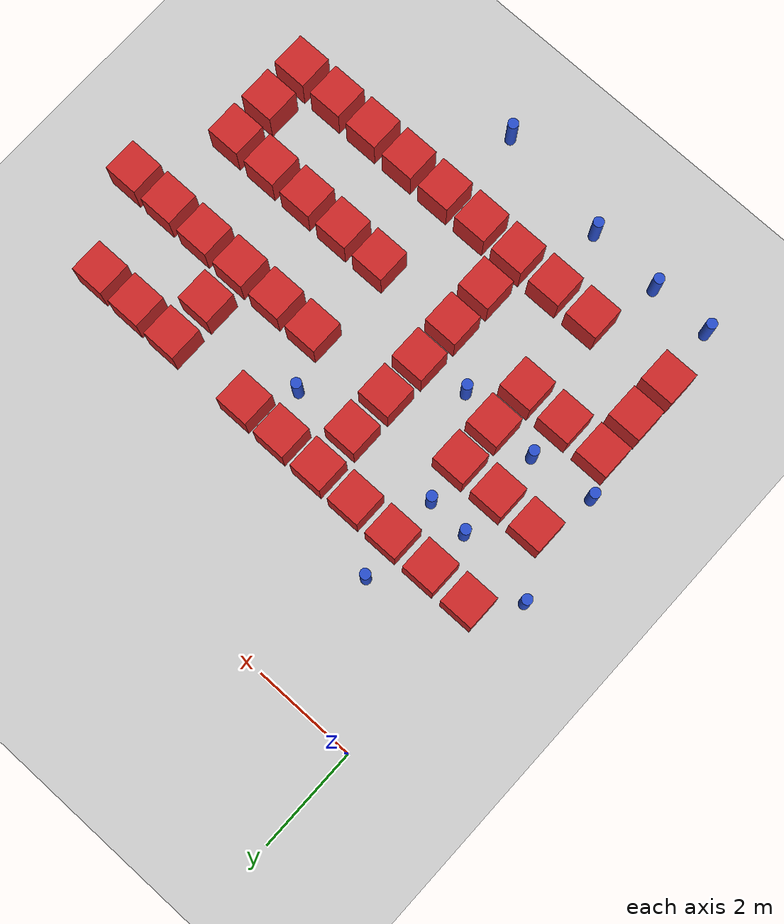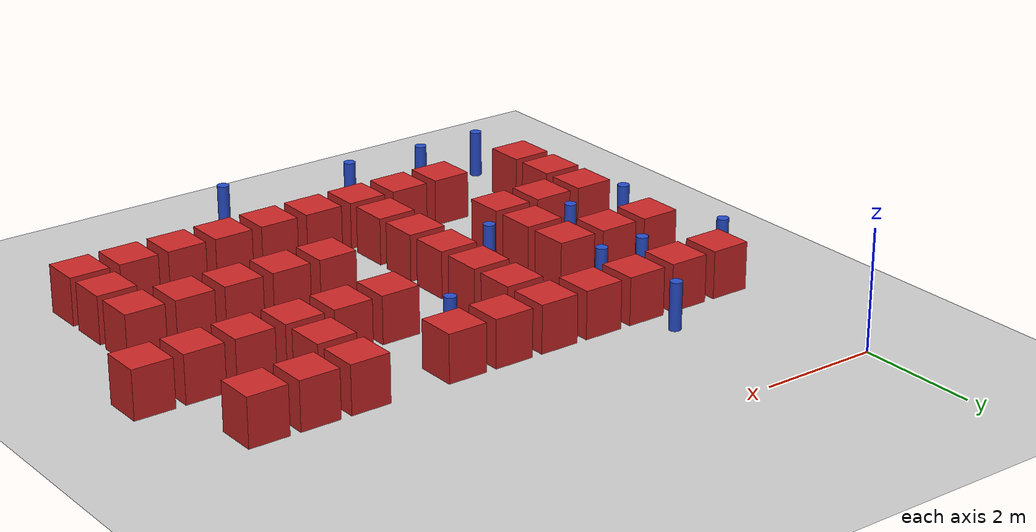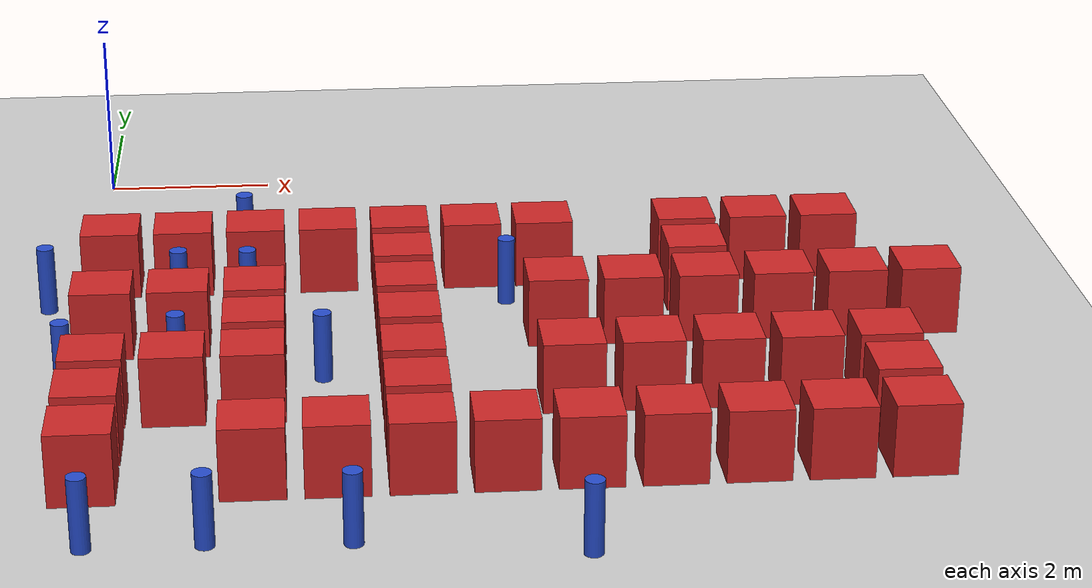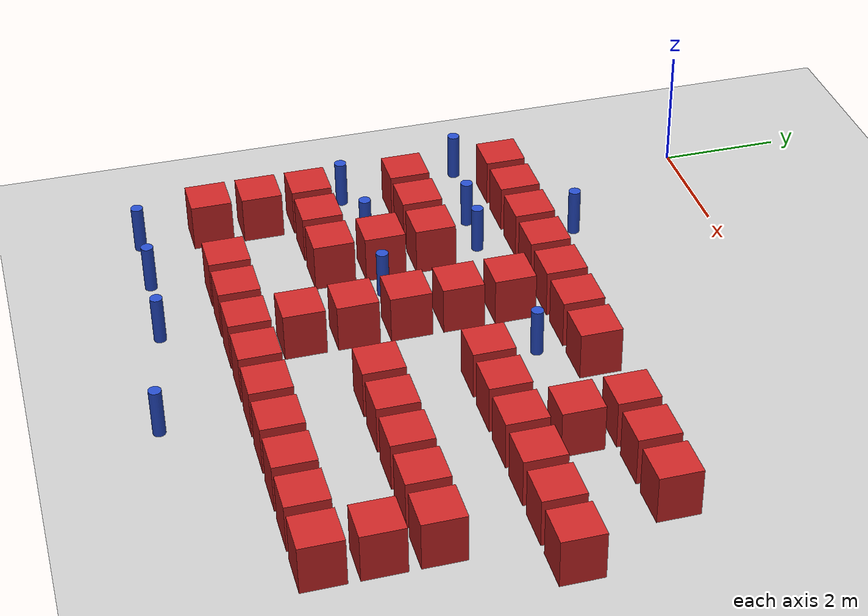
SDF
<sdf version="1.6">
 <world name="default">
  <model name="ground_plane">
   <static>1</static>
   <link name="link">
    <collision name="collision">
     <geometry><plane><normal>0 0 1</normal><size>100 100</size></plane></geometry>
     <surface><friction><ode><mu>100</mu><mu2>50</mu2></ode></friction></surface>
    </collision>
    <visual name="visual">
     <cast_shadows>0</cast_shadows>
     <geometry><plane><normal>0 0 1</normal><size>100 100</size></plane></geometry>
     <material>
      <script><uri>file://media/materials/scripts/gazebo.material</uri><name>Gazebo/Grey</name></script>
     </material>
    </visual>
   </link>
  </model>
  <model name="box_obstacle112">
   <static>0</static>
   <link name="link">
    <pose>0 0 0.1 0 -0 0</pose>
    <inertial>
     <mass>100</mass>
     <inertia>
      <ixx>0.166667</ixx>
      <ixy>0</ixy>
      <ixz>0</ixz>
      <iyy>0.166667</iyy>
      <iyz>0</iyz>
      <izz>0.166667</izz>
     </inertia>
    </inertial>
    <collision name="collision"><geometry><box><size>0.675 0.675 0.8</size></box></geometry></collision>
    <visual name="visual">
     <geometry><box><size>0.675 0.675 0.8</size></box></geometry>
     <material>
      <script><name>Gazebo/Red</name><uri>file://media/materials/scripts/gazebo.material</uri></script>
     </material>
    </visual>
   </link>
   <pose>0.19903 -8.30135 0.299996 4e-06 -0 0.001125</pose>
  </model>
  <model name="box_obstacle113">
   <static>0</static>
   <link name="link">
    <pose>0 0 0.1 0 -0 0</pose>
    <inertial>
     <mass>100</mass>
     <inertia>
      <ixx>0.166667</ixx>
      <ixy>0</ixy>
      <ixz>0</ixz>
      <iyy>0.166667</iyy>
      <iyz>0</iyz>
      <izz>0.166667</izz>
     </inertia>
    </inertial>
    <collision name="collision"><geometry><box><size>0.675 0.675 0.8</size></box></geometry></collision>
    <visual name="visual">
     <geometry><box><size>0.675 0.675 0.8</size></box></geometry>
     <material>
      <script><name>Gazebo/Red</name><uri>file://media/materials/scripts/gazebo.material</uri></script>
     </material>
    </visual>
   </link>
   <pose>0.19903 -7.45135 0.299996 4e-06 -0 0.001125</pose>
  </model>
  <model name="box_obstacle114">
   <static>0</static>
   <link name="link">
    <pose>0 0 0.1 0 -0 0</pose>
    <inertial>
     <mass>100</mass>
     <inertia>
      <ixx>0.166667</ixx>
      <ixy>0</ixy>
      <ixz>0</ixz>
      <iyy>0.166667</iyy>
      <iyz>0</iyz>
      <izz>0.166667</izz>
     </inertia>
    </inertial>
    <collision name="collision"><geometry><box><size>0.675 0.675 0.8</size></box></geometry></collision>
    <visual name="visual">
     <geometry><box><size>0.675 0.675 0.8</size></box></geometry>
     <material>
      <script><name>Gazebo/Red</name><uri>file://media/materials/scripts/gazebo.material</uri></script>
     </material>
    </visual>
   </link>
   <pose>0.19903 -6.60135 0.299996 4e-06 -0 0.001125</pose>
  </model>
  <model name="box_obstacle115">
   <static>0</static>
   <link name="link">
    <pose>0 0 0.1 0 -0 0</pose>
    <inertial>
     <mass>100</mass>
     <inertia>
      <ixx>0.166667</ixx>
      <ixy>0</ixy>
      <ixz>0</ixz>
      <iyy>0.166667</iyy>
      <iyz>0</iyz>
      <izz>0.166667</izz>
     </inertia>
    </inertial>
    <collision name="collision"><geometry><box><size>0.675 0.675 0.8</size></box></geometry></collision>
    <visual name="visual">
     <geometry><box><size>0.675 0.675 0.8</size></box></geometry>
     <material>
      <script><name>Gazebo/Red</name><uri>file://media/materials/scripts/gazebo.material</uri></script>
     </material>
    </visual>
   </link>
   <pose>0.19903 -4.90135 0.299996 4e-06 -0 0.001125</pose>
  </model>
  <model name="box_obstacle116">
   <static>0</static>
   <link name="link">
    <pose>0 0 0.1 0 -0 0</pose>
    <inertial>
     <mass>100</mass>
     <inertia>
      <ixx>0.166667</ixx>
      <ixy>0</ixy>
      <ixz>0</ixz>
      <iyy>0.166667</iyy>
      <iyz>0</iyz>
      <izz>0.166667</izz>
     </inertia>
    </inertial>
    <collision name="collision"><geometry><box><size>0.675 0.675 0.8</size></box></geometry></collision>
    <visual name="visual">
     <geometry><box><size>0.675 0.675 0.8</size></box></geometry>
     <material>
      <script><name>Gazebo/Red</name><uri>file://media/materials/scripts/gazebo.material</uri></script>
     </material>
    </visual>
   </link>
   <pose>0.19903 -3.20135 0.299996 4e-06 -0 0.001125</pose>
  </model>
  <model name="box_obstacle127">
   <static>0</static>
   <link name="link">
    <pose>0 0 0.1 0 -0 0</pose>
    <inertial>
     <mass>100</mass>
     <inertia>
      <ixx>0.166667</ixx>
      <ixy>0</ixy>
      <ixz>0</ixz>
      <iyy>0.166667</iyy>
      <iyz>0</iyz>
      <izz>0.166667</izz>
     </inertia>
    </inertial>
    <collision name="collision"><geometry><box><size>0.675 0.675 0.8</size></box></geometry></collision>
    <visual name="visual">
     <geometry><box><size>0.675 0.675 0.8</size></box></geometry>
     <material>
      <script><name>Gazebo/Red</name><uri>file://media/materials/scripts/gazebo.material</uri></script>
     </material>
    </visual>
   </link>
   <pose>1.04903 -6.60135 0.299996 4e-06 -0 0.001125</pose>
  </model>
  <model name="box_obstacle128">
   <static>0</static>
   <link name="link">
    <pose>0 0 0.1 0 -0 0</pose>
    <inertial>
     <mass>100</mass>
     <inertia>
      <ixx>0.166667</ixx>
      <ixy>0</ixy>
      <ixz>0</ixz>
      <iyy>0.166667</iyy>
      <iyz>0</iyz>
      <izz>0.166667</izz>
     </inertia>
    </inertial>
    <collision name="collision"><geometry><box><size>0.675 0.675 0.8</size></box></geometry></collision>
    <visual name="visual">
     <geometry><box><size>0.675 0.675 0.8</size></box></geometry>
     <material>
      <script><name>Gazebo/Red</name><uri>file://media/materials/scripts/gazebo.material</uri></script>
     </material>
    </visual>
   </link>
   <pose>1.04903 -4.90135 0.299996 4e-06 -0 0.001125</pose>
  </model>
  <model name="box_obstacle129">
   <static>0</static>
   <link name="link">
    <pose>0 0 0.1 0 -0 0</pose>
    <inertial>
     <mass>100</mass>
     <inertia>
      <ixx>0.166667</ixx>
      <ixy>0</ixy>
      <ixz>0</ixz>
      <iyy>0.166667</iyy>
      <iyz>0</iyz>
      <izz>0.166667</izz>
     </inertia>
    </inertial>
    <collision name="collision"><geometry><box><size>0.675 0.675 0.8</size></box></geometry></collision>
    <visual name="visual">
     <geometry><box><size>0.675 0.675 0.8</size></box></geometry>
     <material>
      <script><name>Gazebo/Red</name><uri>file://media/materials/scripts/gazebo.material</uri></script>
     </material>
    </visual>
   </link>
   <pose>1.04903 -3.20135 0.299996 4e-06 -0 0.001125</pose>
  </model>
  <model name="box_obstacle133">
   <static>0</static>
   <link name="link">
    <pose>0 0 0.1 0 -0 0</pose>
    <inertial>
     <mass>100</mass>
     <inertia>
      <ixx>0.166667</ixx>
      <ixy>0</ixy>
      <ixz>0</ixz>
      <iyy>0.166667</iyy>
      <iyz>0</iyz>
      <izz>0.166667</izz>
     </inertia>
    </inertial>
    <collision name="collision"><geometry><box><size>0.675 0.675 0.8</size></box></geometry></collision>
    <visual name="visual">
     <geometry><box><size>0.675 0.675 0.8</size></box></geometry>
     <material>
      <script><name>Gazebo/Red</name><uri>file://media/materials/scripts/gazebo.material</uri></script>
     </material>
    </visual>
   </link>
   <pose>1.89903 -8.30135 0.299996 4e-06 -0 0.001125</pose>
  </model>
  <model name="box_obstacle134">
   <static>0</static>
   <link name="link">
    <pose>0 0 0.1 0 -0 0</pose>
    <inertial>
     <mass>100</mass>
     <inertia>
      <ixx>0.166667</ixx>
      <ixy>0</ixy>
      <ixz>0</ixz>
      <iyy>0.166667</iyy>
      <iyz>0</iyz>
      <izz>0.166667</izz>
     </inertia>
    </inertial>
    <collision name="collision"><geometry><box><size>0.675 0.675 0.8</size></box></geometry></collision>
    <visual name="visual">
     <geometry><box><size>0.675 0.675 0.8</size></box></geometry>
     <material>
      <script><name>Gazebo/Red</name><uri>file://media/materials/scripts/gazebo.material</uri></script>
     </material>
    </visual>
   </link>
   <pose>1.89903 -6.60135 0.299996 4e-06 -0 0.001125</pose>
  </model>
  <model name="box_obstacle135">
   <static>0</static>
   <link name="link">
    <pose>0 0 0.1 0 -0 0</pose>
    <inertial>
     <mass>100</mass>
     <inertia>
      <ixx>0.166667</ixx>
      <ixy>0</ixy>
      <ixz>0</ixz>
      <iyy>0.166667</iyy>
      <iyz>0</iyz>
      <izz>0.166667</izz>
     </inertia>
    </inertial>
    <collision name="collision"><geometry><box><size>0.675 0.675 0.8</size></box></geometry></collision>
    <visual name="visual">
     <geometry><box><size>0.675 0.675 0.8</size></box></geometry>
     <material>
      <script><name>Gazebo/Red</name><uri>file://media/materials/scripts/gazebo.material</uri></script>
     </material>
    </visual>
   </link>
   <pose>1.89903 -5.75135 0.299996 4e-06 -0 0.001125</pose>
  </model>
  <model name="box_obstacle136">
   <static>0</static>
   <link name="link">
    <pose>0 0 0.1 0 -0 0</pose>
    <inertial>
     <mass>100</mass>
     <inertia>
      <ixx>0.166667</ixx>
      <ixy>0</ixy>
      <ixz>0</ixz>
      <iyy>0.166667</iyy>
      <iyz>0</iyz>
      <izz>0.166667</izz>
     </inertia>
    </inertial>
    <collision name="collision"><geometry><box><size>0.675 0.675 0.8</size></box></geometry></collision>
    <visual name="visual">
     <geometry><box><size>0.675 0.675 0.8</size></box></geometry>
     <material>
      <script><name>Gazebo/Red</name><uri>file://media/materials/scripts/gazebo.material</uri></script>
     </material>
    </visual>
   </link>
   <pose>1.89903 -4.90135 0.299996 4e-06 -0 0.001125</pose>
  </model>
  <model name="box_obstacle137">
   <static>0</static>
   <link name="link">
    <pose>0 0 0.1 0 -0 0</pose>
    <inertial>
     <mass>100</mass>
     <inertia>
      <ixx>0.166667</ixx>
      <ixy>0</ixy>
      <ixz>0</ixz>
      <iyy>0.166667</iyy>
      <iyz>0</iyz>
      <izz>0.166667</izz>
     </inertia>
    </inertial>
    <collision name="collision"><geometry><box><size>0.675 0.675 0.8</size></box></geometry></collision>
    <visual name="visual">
     <geometry><box><size>0.675 0.675 0.8</size></box></geometry>
     <material>
      <script><name>Gazebo/Red</name><uri>file://media/materials/scripts/gazebo.material</uri></script>
     </material>
    </visual>
   </link>
   <pose>1.89903 -3.20135 0.299996 4e-06 -0 0.001125</pose>
  </model>
  <model name="box_obstacle148">
   <static>0</static>
   <link name="link">
    <pose>0 0 0.1 0 -0 0</pose>
    <inertial>
     <mass>100</mass>
     <inertia>
      <ixx>0.166667</ixx>
      <ixy>0</ixy>
      <ixz>0</ixz>
      <iyy>0.166667</iyy>
      <iyz>0</iyz>
      <izz>0.166667</izz>
     </inertia>
    </inertial>
    <collision name="collision"><geometry><box><size>0.675 0.675 0.8</size></box></geometry></collision>
    <visual name="visual">
     <geometry><box><size>0.675 0.675 0.8</size></box></geometry>
     <material>
      <script><name>Gazebo/Red</name><uri>file://media/materials/scripts/gazebo.material</uri></script>
     </material>
    </visual>
   </link>
   <pose>2.74903 -8.30135 0.299996 4e-06 -0 0.001125</pose>
  </model>
  <model name="box_obstacle149">
   <static>0</static>
   <link name="link">
    <pose>0 0 0.1 0 -0 0</pose>
    <inertial>
     <mass>100</mass>
     <inertia>
      <ixx>0.166667</ixx>
      <ixy>0</ixy>
      <ixz>0</ixz>
      <iyy>0.166667</iyy>
      <iyz>0</iyz>
      <izz>0.166667</izz>
     </inertia>
    </inertial>
    <collision name="collision"><geometry><box><size>0.675 0.675 0.8</size></box></geometry></collision>
    <visual name="visual">
     <geometry><box><size>0.675 0.675 0.8</size></box></geometry>
     <material>
      <script><name>Gazebo/Red</name><uri>file://media/materials/scripts/gazebo.material</uri></script>
     </material>
    </visual>
   </link>
   <pose>2.74903 -3.20135 0.299996 4e-06 -0 0.001125</pose>
  </model>
  <model name="box_obstacle155">
   <static>0</static>
   <link name="link">
    <pose>0 0 0.1 0 -0 0</pose>
    <inertial>
     <mass>100</mass>
     <inertia>
      <ixx>0.166667</ixx>
      <ixy>0</ixy>
      <ixz>0</ixz>
      <iyy>0.166667</iyy>
      <iyz>0</iyz>
      <izz>0.166667</izz>
     </inertia>
    </inertial>
    <collision name="collision"><geometry><box><size>0.675 0.675 0.8</size></box></geometry></collision>
    <visual name="visual">
     <geometry><box><size>0.675 0.675 0.8</size></box></geometry>
     <material>
      <script><name>Gazebo/Red</name><uri>file://media/materials/scripts/gazebo.material</uri></script>
     </material>
    </visual>
   </link>
   <pose>3.59903 -8.30135 0.299996 4e-06 -0 0.001125</pose>
  </model>
  <model name="box_obstacle156">
   <static>0</static>
   <link name="link">
    <pose>0 0 0.1 0 -0 0</pose>
    <inertial>
     <mass>100</mass>
     <inertia>
      <ixx>0.166667</ixx>
      <ixy>0</ixy>
      <ixz>0</ixz>
      <iyy>0.166667</iyy>
      <iyz>0</iyz>
      <izz>0.166667</izz>
     </inertia>
    </inertial>
    <collision name="collision"><geometry><box><size>0.675 0.675 0.8</size></box></geometry></collision>
    <visual name="visual">
     <geometry><box><size>0.675 0.675 0.8</size></box></geometry>
     <material>
      <script><name>Gazebo/Red</name><uri>file://media/materials/scripts/gazebo.material</uri></script>
     </material>
    </visual>
   </link>
   <pose>3.59903 -7.45135 0.299996 4e-06 -0 0.001125</pose>
  </model>
  <model name="box_obstacle157">
   <static>0</static>
   <link name="link">
    <pose>0 0 0.1 0 -0 0</pose>
    <inertial>
     <mass>100</mass>
     <inertia>
      <ixx>0.166667</ixx>
      <ixy>0</ixy>
      <ixz>0</ixz>
      <iyy>0.166667</iyy>
      <iyz>0</iyz>
      <izz>0.166667</izz>
     </inertia>
    </inertial>
    <collision name="collision"><geometry><box><size>0.675 0.675 0.8</size></box></geometry></collision>
    <visual name="visual">
     <geometry><box><size>0.675 0.675 0.8</size></box></geometry>
     <material>
      <script><name>Gazebo/Red</name><uri>file://media/materials/scripts/gazebo.material</uri></script>
     </material>
    </visual>
   </link>
   <pose>3.59903 -6.60135 0.299996 4e-06 -0 0.001125</pose>
  </model>
  <model name="box_obstacle158">
   <static>0</static>
   <link name="link">
    <pose>0 0 0.1 0 -0 0</pose>
    <inertial>
     <mass>100</mass>
     <inertia>
      <ixx>0.166667</ixx>
      <ixy>0</ixy>
      <ixz>0</ixz>
      <iyy>0.166667</iyy>
      <iyz>0</iyz>
      <izz>0.166667</izz>
     </inertia>
    </inertial>
    <collision name="collision"><geometry><box><size>0.675 0.675 0.8</size></box></geometry></collision>
    <visual name="visual">
     <geometry><box><size>0.675 0.675 0.8</size></box></geometry>
     <material>
      <script><name>Gazebo/Red</name><uri>file://media/materials/scripts/gazebo.material</uri></script>
     </material>
    </visual>
   </link>
   <pose>3.59903 -5.75135 0.299996 4e-06 -0 0.001125</pose>
  </model>
  <model name="box_obstacle159">
   <static>0</static>
   <link name="link">
    <pose>0 0 0.1 0 -0 0</pose>
    <inertial>
     <mass>100</mass>
     <inertia>
      <ixx>0.166667</ixx>
      <ixy>0</ixy>
      <ixz>0</ixz>
      <iyy>0.166667</iyy>
      <iyz>0</iyz>
      <izz>0.166667</izz>
     </inertia>
    </inertial>
    <collision name="collision"><geometry><box><size>0.675 0.675 0.8</size></box></geometry></collision>
    <visual name="visual">
     <geometry><box><size>0.675 0.675 0.8</size></box></geometry>
     <material>
      <script><name>Gazebo/Red</name><uri>file://media/materials/scripts/gazebo.material</uri></script>
     </material>
    </visual>
   </link>
   <pose>3.59903 -4.90135 0.299996 4e-06 -0 0.001125</pose>
  </model>
  <model name="box_obstacle160">
   <static>0</static>
   <link name="link">
    <pose>0 0 0.1 0 -0 0</pose>
    <inertial>
     <mass>100</mass>
     <inertia>
      <ixx>0.166667</ixx>
      <ixy>0</ixy>
      <ixz>0</ixz>
      <iyy>0.166667</iyy>
      <iyz>0</iyz>
      <izz>0.166667</izz>
     </inertia>
    </inertial>
    <collision name="collision"><geometry><box><size>0.675 0.675 0.8</size></box></geometry></collision>
    <visual name="visual">
     <geometry><box><size>0.675 0.675 0.8</size></box></geometry>
     <material>
      <script><name>Gazebo/Red</name><uri>file://media/materials/scripts/gazebo.material</uri></script>
     </material>
    </visual>
   </link>
   <pose>3.59903 -4.05135 0.299996 4e-06 -0 0.001125</pose>
  </model>
  <model name="box_obstacle161">
   <static>0</static>
   <link name="link">
    <pose>0 0 0.1 0 -0 0</pose>
    <inertial>
     <mass>100</mass>
     <inertia>
      <ixx>0.166667</ixx>
      <ixy>0</ixy>
      <ixz>0</ixz>
      <iyy>0.166667</iyy>
      <iyz>0</iyz>
      <izz>0.166667</izz>
     </inertia>
    </inertial>
    <collision name="collision"><geometry><box><size>0.675 0.675 0.8</size></box></geometry></collision>
    <visual name="visual">
     <geometry><box><size>0.675 0.675 0.8</size></box></geometry>
     <material>
      <script><name>Gazebo/Red</name><uri>file://media/materials/scripts/gazebo.material</uri></script>
     </material>
    </visual>
   </link>
   <pose>3.59903 -3.20135 0.299996 4e-06 -0 0.001125</pose>
  </model>
  <model name="box_obstacle171">
   <static>0</static>
   <link name="link">
    <pose>0 0 0.1 0 -0 0</pose>
    <inertial>
     <mass>100</mass>
     <inertia>
      <ixx>0.166667</ixx>
      <ixy>0</ixy>
      <ixz>0</ixz>
      <iyy>0.166667</iyy>
      <iyz>0</iyz>
      <izz>0.166667</izz>
     </inertia>
    </inertial>
    <collision name="collision"><geometry><box><size>0.675 0.675 0.8</size></box></geometry></collision>
    <visual name="visual">
     <geometry><box><size>0.675 0.675 0.8</size></box></geometry>
     <material>
      <script><name>Gazebo/Red</name><uri>file://media/materials/scripts/gazebo.material</uri></script>
     </material>
    </visual>
   </link>
   <pose>4.44903 -8.30135 0.299996 4e-06 -0 0.001125</pose>
  </model>
  <model name="box_obstacle172">
   <static>0</static>
   <link name="link">
    <pose>0 0 0.1 0 -0 0</pose>
    <inertial>
     <mass>100</mass>
     <inertia>
      <ixx>0.166667</ixx>
      <ixy>0</ixy>
      <ixz>0</ixz>
      <iyy>0.166667</iyy>
      <iyz>0</iyz>
      <izz>0.166667</izz>
     </inertia>
    </inertial>
    <collision name="collision"><geometry><box><size>0.675 0.675 0.8</size></box></geometry></collision>
    <visual name="visual">
     <geometry><box><size>0.675 0.675 0.8</size></box></geometry>
     <material>
      <script><name>Gazebo/Red</name><uri>file://media/materials/scripts/gazebo.material</uri></script>
     </material>
    </visual>
   </link>
   <pose>4.44903 -3.20135 0.299996 4e-06 -0 0.001125</pose>
  </model>
  <model name="box_obstacle177">
   <static>0</static>
   <link name="link">
    <pose>0 0 0.1 0 -0 0</pose>
    <inertial>
     <mass>100</mass>
     <inertia>
      <ixx>0.166667</ixx>
      <ixy>0</ixy>
      <ixz>0</ixz>
      <iyy>0.166667</iyy>
      <iyz>0</iyz>
      <izz>0.166667</izz>
     </inertia>
    </inertial>
    <collision name="collision"><geometry><box><size>0.675 0.675 0.8</size></box></geometry></collision>
    <visual name="visual">
     <geometry><box><size>0.675 0.675 0.8</size></box></geometry>
     <material>
      <script><name>Gazebo/Red</name><uri>file://media/materials/scripts/gazebo.material</uri></script>
     </material>
    </visual>
   </link>
   <pose>5.29903 -8.30135 0.299996 4e-06 -0 0.001125</pose>
  </model>
  <model name="box_obstacle178">
   <static>0</static>
   <link name="link">
    <pose>0 0 0.1 0 -0 0</pose>
    <inertial>
     <mass>100</mass>
     <inertia>
      <ixx>0.166667</ixx>
      <ixy>0</ixy>
      <ixz>0</ixz>
      <iyy>0.166667</iyy>
      <iyz>0</iyz>
      <izz>0.166667</izz>
     </inertia>
    </inertial>
    <collision name="collision"><geometry><box><size>0.675 0.675 0.8</size></box></geometry></collision>
    <visual name="visual">
     <geometry><box><size>0.675 0.675 0.8</size></box></geometry>
     <material>
      <script><name>Gazebo/Red</name><uri>file://media/materials/scripts/gazebo.material</uri></script>
     </material>
    </visual>
   </link>
   <pose>5.29903 -6.60135 0.299996 4e-06 -0 0.001125</pose>
  </model>
  <model name="box_obstacle179">
   <static>0</static>
   <link name="link">
    <pose>0 0 0.1 0 -0 0</pose>
    <inertial>
     <mass>100</mass>
     <inertia>
      <ixx>0.166667</ixx>
      <ixy>0</ixy>
      <ixz>0</ixz>
      <iyy>0.166667</iyy>
      <iyz>0</iyz>
      <izz>0.166667</izz>
     </inertia>
    </inertial>
    <collision name="collision"><geometry><box><size>0.675 0.675 0.8</size></box></geometry></collision>
    <visual name="visual">
     <geometry><box><size>0.675 0.675 0.8</size></box></geometry>
     <material>
      <script><name>Gazebo/Red</name><uri>file://media/materials/scripts/gazebo.material</uri></script>
     </material>
    </visual>
   </link>
   <pose>5.29903 -4.90135 0.299996 4e-06 -0 0.001125</pose>
  </model>
  <model name="box_obstacle180">
   <static>0</static>
   <link name="link">
    <pose>0 0 0.1 0 -0 0</pose>
    <inertial>
     <mass>100</mass>
     <inertia>
      <ixx>0.166667</ixx>
      <ixy>0</ixy>
      <ixz>0</ixz>
      <iyy>0.166667</iyy>
      <iyz>0</iyz>
      <izz>0.166667</izz>
     </inertia>
    </inertial>
    <collision name="collision"><geometry><box><size>0.675 0.675 0.8</size></box></geometry></collision>
    <visual name="visual">
     <geometry><box><size>0.675 0.675 0.8</size></box></geometry>
     <material>
      <script><name>Gazebo/Red</name><uri>file://media/materials/scripts/gazebo.material</uri></script>
     </material>
    </visual>
   </link>
   <pose>5.29903 -3.20135 0.299996 4e-06 -0 0.001125</pose>
  </model>
  <model name="box_obstacle191">
   <static>0</static>
   <link name="link">
    <pose>0 0 0.1 0 -0 0</pose>
    <inertial>
     <mass>100</mass>
     <inertia>
      <ixx>0.166667</ixx>
      <ixy>0</ixy>
      <ixz>0</ixz>
      <iyy>0.166667</iyy>
      <iyz>0</iyz>
      <izz>0.166667</izz>
     </inertia>
    </inertial>
    <collision name="collision"><geometry><box><size>0.675 0.675 0.8</size></box></geometry></collision>
    <visual name="visual">
     <geometry><box><size>0.675 0.675 0.8</size></box></geometry>
     <material>
      <script><name>Gazebo/Red</name><uri>file://media/materials/scripts/gazebo.material</uri></script>
     </material>
    </visual>
   </link>
   <pose>6.14903 -8.30135 0.299996 4e-06 -0 0.001125</pose>
  </model>
  <model name="box_obstacle192">
   <static>0</static>
   <link name="link">
    <pose>0 0 0.1 0 -0 0</pose>
    <inertial>
     <mass>100</mass>
     <inertia>
      <ixx>0.166667</ixx>
      <ixy>0</ixy>
      <ixz>0</ixz>
      <iyy>0.166667</iyy>
      <iyz>0</iyz>
      <izz>0.166667</izz>
     </inertia>
    </inertial>
    <collision name="collision"><geometry><box><size>0.675 0.675 0.8</size></box></geometry></collision>
    <visual name="visual">
     <geometry><box><size>0.675 0.675 0.8</size></box></geometry>
     <material>
      <script><name>Gazebo/Red</name><uri>file://media/materials/scripts/gazebo.material</uri></script>
     </material>
    </visual>
   </link>
   <pose>6.14903 -6.60135 0.299996 4e-06 -0 0.001125</pose>
  </model>
  <model name="box_obstacle193">
   <static>0</static>
   <link name="link">
    <pose>0 0 0.1 0 -0 0</pose>
    <inertial>
     <mass>100</mass>
     <inertia>
      <ixx>0.166667</ixx>
      <ixy>0</ixy>
      <ixz>0</ixz>
      <iyy>0.166667</iyy>
      <iyz>0</iyz>
      <izz>0.166667</izz>
     </inertia>
    </inertial>
    <collision name="collision"><geometry><box><size>0.675 0.675 0.8</size></box></geometry></collision>
    <visual name="visual">
     <geometry><box><size>0.675 0.675 0.8</size></box></geometry>
     <material>
      <script><name>Gazebo/Red</name><uri>file://media/materials/scripts/gazebo.material</uri></script>
     </material>
    </visual>
   </link>
   <pose>6.14903 -4.90135 0.299996 4e-06 -0 0.001125</pose>
  </model>
  <model name="box_obstacle199">
   <static>0</static>
   <link name="link">
    <pose>0 0 0.1 0 -0 0</pose>
    <inertial>
     <mass>100</mass>
     <inertia>
      <ixx>0.166667</ixx>
      <ixy>0</ixy>
      <ixz>0</ixz>
      <iyy>0.166667</iyy>
      <iyz>0</iyz>
      <izz>0.166667</izz>
     </inertia>
    </inertial>
    <collision name="collision"><geometry><box><size>0.675 0.675 0.8</size></box></geometry></collision>
    <visual name="visual">
     <geometry><box><size>0.675 0.675 0.8</size></box></geometry>
     <material>
      <script><name>Gazebo/Red</name><uri>file://media/materials/scripts/gazebo.material</uri></script>
     </material>
    </visual>
   </link>
   <pose>6.99903 -8.30135 0.299996 4e-06 -0 0.001125</pose>
  </model>
  <model name="box_obstacle200">
   <static>0</static>
   <link name="link">
    <pose>0 0 0.1 0 -0 0</pose>
    <inertial>
     <mass>100</mass>
     <inertia>
      <ixx>0.166667</ixx>
      <ixy>0</ixy>
      <ixz>0</ixz>
      <iyy>0.166667</iyy>
      <iyz>0</iyz>
      <izz>0.166667</izz>
     </inertia>
    </inertial>
    <collision name="collision"><geometry><box><size>0.675 0.675 0.8</size></box></geometry></collision>
    <visual name="visual">
     <geometry><box><size>0.675 0.675 0.8</size></box></geometry>
     <material>
      <script><name>Gazebo/Red</name><uri>file://media/materials/scripts/gazebo.material</uri></script>
     </material>
    </visual>
   </link>
   <pose>6.99903 -6.60135 0.299996 4e-06 -0 0.001125</pose>
  </model>
  <model name="box_obstacle201">
   <static>0</static>
   <link name="link">
    <pose>0 0 0.1 0 -0 0</pose>
    <inertial>
     <mass>100</mass>
     <inertia>
      <ixx>0.166667</ixx>
      <ixy>0</ixy>
      <ixz>0</ixz>
      <iyy>0.166667</iyy>
      <iyz>0</iyz>
      <izz>0.166667</izz>
     </inertia>
    </inertial>
    <collision name="collision"><geometry><box><size>0.675 0.675 0.8</size></box></geometry></collision>
    <visual name="visual">
     <geometry><box><size>0.675 0.675 0.8</size></box></geometry>
     <material>
      <script><name>Gazebo/Red</name><uri>file://media/materials/scripts/gazebo.material</uri></script>
     </material>
    </visual>
   </link>
   <pose>6.99903 -4.90135 0.299996 4e-06 -0 0.001125</pose>
  </model>
  <model name="box_obstacle202">
   <static>0</static>
   <link name="link">
    <pose>0 0 0.1 0 -0 0</pose>
    <inertial>
     <mass>100</mass>
     <inertia>
      <ixx>0.166667</ixx>
      <ixy>0</ixy>
      <ixz>0</ixz>
      <iyy>0.166667</iyy>
      <iyz>0</iyz>
      <izz>0.166667</izz>
     </inertia>
    </inertial>
    <collision name="collision"><geometry><box><size>0.675 0.675 0.8</size></box></geometry></collision>
    <visual name="visual">
     <geometry><box><size>0.675 0.675 0.8</size></box></geometry>
     <material>
      <script><name>Gazebo/Red</name><uri>file://media/materials/scripts/gazebo.material</uri></script>
     </material>
    </visual>
   </link>
   <pose>6.99903 -4.05135 0.299996 4e-06 -0 0.001125</pose>
  </model>
  <model name="box_obstacle203">
   <static>0</static>
   <link name="link">
    <pose>0 0 0.1 0 -0 0</pose>
    <inertial>
     <mass>100</mass>
     <inertia>
      <ixx>0.166667</ixx>
      <ixy>0</ixy>
      <ixz>0</ixz>
      <iyy>0.166667</iyy>
      <iyz>0</iyz>
      <izz>0.166667</izz>
     </inertia>
    </inertial>
    <collision name="collision"><geometry><box><size>0.675 0.675 0.8</size></box></geometry></collision>
    <visual name="visual">
     <geometry><box><size>0.675 0.675 0.8</size></box></geometry>
     <material>
      <script><name>Gazebo/Red</name><uri>file://media/materials/scripts/gazebo.material</uri></script>
     </material>
    </visual>
   </link>
   <pose>6.99903 -3.20135 0.299996 4e-06 -0 0.001125</pose>
  </model>
  <model name="box_obstacle214">
   <static>0</static>
   <link name="link">
    <pose>0 0 0.1 0 -0 0</pose>
    <inertial>
     <mass>100</mass>
     <inertia>
      <ixx>0.166667</ixx>
      <ixy>0</ixy>
      <ixz>0</ixz>
      <iyy>0.166667</iyy>
      <iyz>0</iyz>
      <izz>0.166667</izz>
     </inertia>
    </inertial>
    <collision name="collision"><geometry><box><size>0.675 0.675 0.8</size></box></geometry></collision>
    <visual name="visual">
     <geometry><box><size>0.675 0.675 0.8</size></box></geometry>
     <material>
      <script><name>Gazebo/Red</name><uri>file://media/materials/scripts/gazebo.material</uri></script>
     </material>
    </visual>
   </link>
   <pose>7.84903 -8.30135 0.299996 4e-06 -0 0.001125</pose>
  </model>
  <model name="box_obstacle215">
   <static>0</static>
   <link name="link">
    <pose>0 0 0.1 0 -0 0</pose>
    <inertial>
     <mass>100</mass>
     <inertia>
      <ixx>0.166667</ixx>
      <ixy>0</ixy>
      <ixz>0</ixz>
      <iyy>0.166667</iyy>
      <iyz>0</iyz>
      <izz>0.166667</izz>
     </inertia>
    </inertial>
    <collision name="collision"><geometry><box><size>0.675 0.675 0.8</size></box></geometry></collision>
    <visual name="visual">
     <geometry><box><size>0.675 0.675 0.8</size></box></geometry>
     <material>
      <script><name>Gazebo/Red</name><uri>file://media/materials/scripts/gazebo.material</uri></script>
     </material>
    </visual>
   </link>
   <pose>7.84903 -6.60135 0.299996 4e-06 -0 0.001125</pose>
  </model>
  <model name="box_obstacle216">
   <static>0</static>
   <link name="link">
    <pose>0 0 0.1 0 -0 0</pose>
    <inertial>
     <mass>100</mass>
     <inertia>
      <ixx>0.166667</ixx>
      <ixy>0</ixy>
      <ixz>0</ixz>
      <iyy>0.166667</iyy>
      <iyz>0</iyz>
      <izz>0.166667</izz>
     </inertia>
    </inertial>
    <collision name="collision"><geometry><box><size>0.675 0.675 0.8</size></box></geometry></collision>
    <visual name="visual">
     <geometry><box><size>0.675 0.675 0.8</size></box></geometry>
     <material>
      <script><name>Gazebo/Red</name><uri>file://media/materials/scripts/gazebo.material</uri></script>
     </material>
    </visual>
   </link>
   <pose>7.84903 -4.90135 0.299996 4e-06 -0 0.001125</pose>
  </model>
  <model name="box_obstacle217">
   <static>0</static>
   <link name="link">
    <pose>0 0 0.1 0 -0 0</pose>
    <inertial>
     <mass>100</mass>
     <inertia>
      <ixx>0.166667</ixx>
      <ixy>0</ixy>
      <ixz>0</ixz>
      <iyy>0.166667</iyy>
      <iyz>0</iyz>
      <izz>0.166667</izz>
     </inertia>
    </inertial>
    <collision name="collision"><geometry><box><size>0.675 0.675 0.8</size></box></geometry></collision>
    <visual name="visual">
     <geometry><box><size>0.675 0.675 0.8</size></box></geometry>
     <material>
      <script><name>Gazebo/Red</name><uri>file://media/materials/scripts/gazebo.material</uri></script>
     </material>
    </visual>
   </link>
   <pose>7.84903 -3.20135 0.299996 4e-06 -0 0.001125</pose>
  </model>
  <model name="box_obstacle222">
   <static>0</static>
   <link name="link">
    <pose>0 0 0.1 0 -0 0</pose>
    <inertial>
     <mass>100</mass>
     <inertia>
      <ixx>0.166667</ixx>
      <ixy>0</ixy>
      <ixz>0</ixz>
      <iyy>0.166667</iyy>
      <iyz>0</iyz>
      <izz>0.166667</izz>
     </inertia>
    </inertial>
    <collision name="collision"><geometry><box><size>0.675 0.675 0.8</size></box></geometry></collision>
    <visual name="visual">
     <geometry><box><size>0.675 0.675 0.8</size></box></geometry>
     <material>
      <script><name>Gazebo/Red</name><uri>file://media/materials/scripts/gazebo.material</uri></script>
     </material>
    </visual>
   </link>
   <pose>8.69903 -8.30135 0.299996 4e-06 -0 0.001125</pose>
  </model>
  <model name="box_obstacle223">
   <static>0</static>
   <link name="link">
    <pose>0 0 0.1 0 -0 0</pose>
    <inertial>
     <mass>100</mass>
     <inertia>
      <ixx>0.166667</ixx>
      <ixy>0</ixy>
      <ixz>0</ixz>
      <iyy>0.166667</iyy>
      <iyz>0</iyz>
      <izz>0.166667</izz>
     </inertia>
    </inertial>
    <collision name="collision"><geometry><box><size>0.675 0.675 0.8</size></box></geometry></collision>
    <visual name="visual">
     <geometry><box><size>0.675 0.675 0.8</size></box></geometry>
     <material>
      <script><name>Gazebo/Red</name><uri>file://media/materials/scripts/gazebo.material</uri></script>
     </material>
    </visual>
   </link>
   <pose>8.69903 -7.45135 0.299996 4e-06 -0 0.001125</pose>
  </model>
  <model name="box_obstacle224">
   <static>0</static>
   <link name="link">
    <pose>0 0 0.1 0 -0 0</pose>
    <inertial>
     <mass>100</mass>
     <inertia>
      <ixx>0.166667</ixx>
      <ixy>0</ixy>
      <ixz>0</ixz>
      <iyy>0.166667</iyy>
      <iyz>0</iyz>
      <izz>0.166667</izz>
     </inertia>
    </inertial>
    <collision name="collision"><geometry><box><size>0.675 0.675 0.8</size></box></geometry></collision>
    <visual name="visual">
     <geometry><box><size>0.675 0.675 0.8</size></box></geometry>
     <material>
      <script><name>Gazebo/Red</name><uri>file://media/materials/scripts/gazebo.material</uri></script>
     </material>
    </visual>
   </link>
   <pose>8.69903 -6.60135 0.299996 4e-06 -0 0.001125</pose>
  </model>
  <model name="box_obstacle225">
   <static>0</static>
   <link name="link">
    <pose>0 0 0.1 0 -0 0</pose>
    <inertial>
     <mass>100</mass>
     <inertia>
      <ixx>0.166667</ixx>
      <ixy>0</ixy>
      <ixz>0</ixz>
      <iyy>0.166667</iyy>
      <iyz>0</iyz>
      <izz>0.166667</izz>
     </inertia>
    </inertial>
    <collision name="collision"><geometry><box><size>0.675 0.675 0.8</size></box></geometry></collision>
    <visual name="visual">
     <geometry><box><size>0.675 0.675 0.8</size></box></geometry>
     <material>
      <script><name>Gazebo/Red</name><uri>file://media/materials/scripts/gazebo.material</uri></script>
     </material>
    </visual>
   </link>
   <pose>8.69903 -4.90135 0.299996 4e-06 -0 0.001125</pose>
  </model>
  <model name="box_obstacle226">
   <static>0</static>
   <link name="link">
    <pose>0 0 0.1 0 -0 0</pose>
    <inertial>
     <mass>100</mass>
     <inertia>
      <ixx>0.166667</ixx>
      <ixy>0</ixy>
      <ixz>0</ixz>
      <iyy>0.166667</iyy>
      <iyz>0</iyz>
      <izz>0.166667</izz>
     </inertia>
    </inertial>
    <collision name="collision"><geometry><box><size>0.675 0.675 0.8</size></box></geometry></collision>
    <visual name="visual">
     <geometry><box><size>0.675 0.675 0.8</size></box></geometry>
     <material>
      <script><name>Gazebo/Red</name><uri>file://media/materials/scripts/gazebo.material</uri></script>
     </material>
    </visual>
   </link>
   <pose>8.69903 -3.20135 0.299996 4e-06 -0 0.001125</pose>
  </model>
  <model name="box_obstacle237">
   <static>0</static>
   <link name="link">
    <pose>0 0 0.1 0 -0 0</pose>
    <inertial>
     <mass>100</mass>
     <inertia>
      <ixx>0.166667</ixx>
      <ixy>0</ixy>
      <ixz>0</ixz>
      <iyy>0.166667</iyy>
      <iyz>0</iyz>
      <izz>0.166667</izz>
     </inertia>
    </inertial>
    <collision name="collision"><geometry><box><size>0.675 0.675 0.8</size></box></geometry></collision>
    <visual name="visual">
     <geometry><box><size>0.675 0.675 0.8</size></box></geometry>
     <material>
      <script><name>Gazebo/Red</name><uri>file://media/materials/scripts/gazebo.material</uri></script>
     </material>
    </visual>
   </link>
   <pose>9.53682 -4.90142 0.299996 -4e-06 0 -0.001038</pose>
  </model>
  <model name="cylinder_obstacle1">
   <static>0</static>
   <link name="link">
    <pose>0 0 1 0 -0 0</pose>
    <inertial>
     <mass>100</mass>
     <inertia>
      <ixx>0.166667</ixx>
      <ixy>0</ixy>
      <ixz>0</ixz>
      <iyy>0.166667</iyy>
      <iyz>0</iyz>
      <izz>0.166667</izz>
     </inertia>
    </inertial>
    <collision name="collision">
     <geometry><cylinder><radius>0.1</radius><length>0.8</length></cylinder></geometry>
    </collision>
    <visual name="visual">
     <geometry><cylinder><radius>0.1</radius><length>0.8</length></cylinder></geometry>
     <material>
      <script><name>Gazebo/Blue</name><uri>file://media/materials/scripts/gazebo.material</uri></script>
     </material>
    </visual>
   </link>
   <pose>-0.509925 -3.84886 -0.6 3e-06 1e-06 0.003884</pose>
  </model>
  <model name="cylinder_obstacle2">
   <static>0</static>
   <link name="link">
    <pose>0 0 1 0 -0 0</pose>
    <inertial>
     <mass>100</mass>
     <inertia>
      <ixx>0.166667</ixx>
      <ixy>0</ixy>
      <ixz>0</ixz>
      <iyy>0.166667</iyy>
      <iyz>0</iyz>
      <izz>0.166667</izz>
     </inertia>
    </inertial>
    <collision name="collision">
     <geometry><cylinder><radius>0.1</radius><length>0.8</length></cylinder></geometry>
    </collision>
    <visual name="visual">
     <geometry><cylinder><radius>0.1</radius><length>0.8</length></cylinder></geometry>
     <material>
      <script><name>Gazebo/Blue</name><uri>file://media/materials/scripts/gazebo.material</uri></script>
     </material>
    </visual>
   </link>
   <pose>1.44674 -9.50615 -0.6 3e-06 1e-06 0.003884</pose>
  </model>
  <model name="cylinder_obstacle14">
   <static>0</static>
   <link name="link">
    <pose>0 0 1 0 -0 0</pose>
    <inertial>
     <mass>100</mass>
     <inertia>
      <ixx>0.166667</ixx>
      <ixy>0</ixy>
      <ixz>0</ixz>
      <iyy>0.166667</iyy>
      <iyz>0</iyz>
      <izz>0.166667</izz>
     </inertia>
    </inertial>
    <collision name="collision">
     <geometry><cylinder><radius>0.1</radius><length>0.8</length></cylinder></geometry>
    </collision>
    <visual name="visual">
     <geometry><cylinder><radius>0.1</radius><length>0.8</length></cylinder></geometry>
     <material>
      <script><name>Gazebo/Blue</name><uri>file://media/materials/scripts/gazebo.material</uri></script>
     </material>
    </visual>
   </link>
   <pose>4.81337 -3.97145 -0.6 3e-06 1e-06 0.003884</pose>
  </model>
  <model name="cylinder_obstacle39">
   <static>0</static>
   <link name="link">
    <pose>0 0 1 0 -0 0</pose>
    <inertial>
     <mass>100</mass>
     <inertia>
      <ixx>0.166667</ixx>
      <ixy>0</ixy>
      <ixz>0</ixz>
      <iyy>0.166667</iyy>
      <iyz>0</iyz>
      <izz>0.166667</izz>
     </inertia>
    </inertial>
    <collision name="collision">
     <geometry><cylinder><radius>0.1</radius><length>0.8</length></cylinder></geometry>
    </collision>
    <visual name="visual">
     <geometry><cylinder><radius>0.1</radius><length>0.8</length></cylinder></geometry>
     <material>
      <script><name>Gazebo/Blue</name><uri>file://media/materials/scripts/gazebo.material</uri></script>
     </material>
    </visual>
   </link>
   <pose>-0.17731 -5.95005 -0.6 3e-06 1e-06 0.003884</pose>
  </model>
  <model name="cylinder_obstacle40">
   <static>0</static>
   <link name="link">
    <pose>0 0 1 0 -0 0</pose>
    <inertial>
     <mass>100</mass>
     <inertia>
      <ixx>0.166667</ixx>
      <ixy>0</ixy>
      <ixz>0</ixz>
      <iyy>0.166667</iyy>
      <iyz>0</iyz>
      <izz>0.166667</izz>
     </inertia>
    </inertial>
    <collision name="collision">
     <geometry><cylinder><radius>0.1</radius><length>0.8</length></cylinder></geometry>
    </collision>
    <visual name="visual">
     <geometry><cylinder><radius>0.1</radius><length>0.8</length></cylinder></geometry>
     <material>
      <script><name>Gazebo/Blue</name><uri>file://media/materials/scripts/gazebo.material</uri></script>
     </material>
    </visual>
   </link>
   <pose>1.81358 -4.07693 -0.6 3e-06 1e-06 0.003884</pose>
  </model>
  <model name="cylinder_obstacle43">
   <static>0</static>
   <link name="link">
    <pose>0 0 1 0 -0 0</pose>
    <inertial>
     <mass>100</mass>
     <inertia>
      <ixx>0.166667</ixx>
      <ixy>0</ixy>
      <ixz>0</ixz>
      <iyy>0.166667</iyy>
      <iyz>0</iyz>
      <izz>0.166667</izz>
     </inertia>
    </inertial>
    <collision name="collision">
     <geometry><cylinder><radius>0.1</radius><length>0.8</length></cylinder></geometry>
    </collision>
    <visual name="visual">
     <geometry><cylinder><radius>0.1</radius><length>0.8</length></cylinder></geometry>
     <material>
      <script><name>Gazebo/Blue</name><uri>file://media/materials/scripts/gazebo.material</uri></script>
     </material>
    </visual>
   </link>
   <pose>2.87952 -9.57386 -0.6 3e-06 1e-06 -0.0012</pose>
  </model>
  <model name="cylinder_obstacle48">
   <static>0</static>
   <link name="link">
    <pose>0 0 1 0 -0 0</pose>
    <inertial>
     <mass>100</mass>
     <inertia>
      <ixx>0.166667</ixx>
      <ixy>0</ixy>
      <ixz>0</ixz>
      <iyy>0.166667</iyy>
      <iyz>0</iyz>
      <izz>0.166667</izz>
     </inertia>
    </inertial>
    <collision name="collision">
     <geometry><cylinder><radius>0.1</radius><length>0.8</length></cylinder></geometry>
    </collision>
    <visual name="visual">
     <geometry><cylinder><radius>0.1</radius><length>0.8</length></cylinder></geometry>
     <material>
      <script><name>Gazebo/Blue</name><uri>file://media/materials/scripts/gazebo.material</uri></script>
     </material>
    </visual>
   </link>
   <pose>0.260591 -9.50155 -0.6 3e-06 1e-06 0.003884</pose>
  </model>
  <model name="cylinder_obstacle50">
   <static>0</static>
   <link name="link">
    <pose>0 0 1 0 -0 0</pose>
    <inertial>
     <mass>100</mass>
     <inertia>
      <ixx>0.166667</ixx>
      <ixy>0</ixy>
      <ixz>0</ixz>
      <iyy>0.166667</iyy>
      <iyz>0</iyz>
      <izz>0.166667</izz>
     </inertia>
    </inertial>
    <collision name="collision">
     <geometry><cylinder><radius>0.1</radius><length>0.8</length></cylinder></geometry>
    </collision>
    <visual name="visual">
     <geometry><cylinder><radius>0.1</radius><length>0.8</length></cylinder></geometry>
     <material>
      <script><name>Gazebo/Blue</name><uri>file://media/materials/scripts/gazebo.material</uri></script>
     </material>
    </visual>
   </link>
   <pose>1.05655 -5.81372 -0.6 3e-06 1e-06 0.003884</pose>
  </model>
  <model name="cylinder_obstacle56">
   <static>0</static>
   <link name="link">
    <pose>0 0 1 0 -0 0</pose>
    <inertial>
     <mass>100</mass>
     <inertia>
      <ixx>0.166667</ixx>
      <ixy>0</ixy>
      <ixz>0</ixz>
      <iyy>0.166667</iyy>
      <iyz>0</iyz>
      <izz>0.166667</izz>
     </inertia>
    </inertial>
    <collision name="collision">
     <geometry><cylinder><radius>0.1</radius><length>0.8</length></cylinder></geometry>
    </collision>
    <visual name="visual">
     <geometry><cylinder><radius>0.1</radius><length>0.8</length></cylinder></geometry>
     <material>
      <script><name>Gazebo/Blue</name><uri>file://media/materials/scripts/gazebo.material</uri></script>
     </material>
    </visual>
   </link>
   <pose>5.1639 -9.93294 -0.6 3e-06 1e-06 0.003884</pose>
  </model>
  <model name="cylinder_obstacle63">
   <static>0</static>
   <link name="link">
    <pose>0 0 1 0 -0 0</pose>
    <inertial>
     <mass>100</mass>
     <inertia>
      <ixx>0.166667</ixx>
      <ixy>0</ixy>
      <ixz>0</ixz>
      <iyy>0.166667</iyy>
      <iyz>0</iyz>
      <izz>0.166667</izz>
     </inertia>
    </inertial>
    <collision name="collision">
     <geometry><cylinder><radius>0.1</radius><length>0.8</length></cylinder></geometry>
    </collision>
    <visual name="visual">
     <geometry><cylinder><radius>0.1</radius><length>0.8</length></cylinder></geometry>
     <material>
      <script><name>Gazebo/Blue</name><uri>file://media/materials/scripts/gazebo.material</uri></script>
     </material>
    </visual>
   </link>
   <pose>1.02164 -4.0392 -0.6 3e-06 1e-06 0.003884</pose>
  </model>
  <model name="cylinder_obstacle65">
   <static>0</static>
   <link name="link">
    <pose>0 0 1 0 -0 0</pose>
    <inertial>
     <mass>100</mass>
     <inertia>
      <ixx>0.166667</ixx>
      <ixy>0</ixy>
      <ixz>0</ixz>
      <iyy>0.166667</iyy>
      <iyz>0</iyz>
      <izz>0.166667</izz>
     </inertia>
    </inertial>
    <collision name="collision">
     <geometry><cylinder><radius>0.1</radius><length>0.8</length></cylinder></geometry>
    </collision>
    <visual name="visual">
     <geometry><cylinder><radius>0.1</radius><length>0.8</length></cylinder></geometry>
     <material>
      <script><name>Gazebo/Blue</name><uri>file://media/materials/scripts/gazebo.material</uri></script>
     </material>
    </visual>
   </link>
   <pose>1.75867 -2.36137 -0.6 3e-06 1e-06 0.003884</pose>
  </model>
  <model name="cylinder_obstacle96">
   <static>0</static>
   <link name="link">
    <pose>0 0 1 0 -0 0</pose>
    <inertial>
     <mass>100</mass>
     <inertia>
      <ixx>0.166667</ixx>
      <ixy>0</ixy>
      <ixz>0</ixz>
      <iyy>0.166667</iyy>
      <iyz>0</iyz>
      <izz>0.166667</izz>
     </inertia>
    </inertial>
    <collision name="collision">
     <geometry><cylinder><radius>0.1</radius><length>0.8</length></cylinder></geometry>
    </collision>
    <visual name="visual">
     <geometry><cylinder><radius>0.1</radius><length>0.8</length></cylinder></geometry>
     <material>
      <script><name>Gazebo/Blue</name><uri>file://media/materials/scripts/gazebo.material</uri></script>
     </material>
    </visual>
   </link>
   <pose>2.64645 -5.90315 -0.6 3e-06 1e-06 0.003884</pose>
  </model>
 </world>
</sdf>
